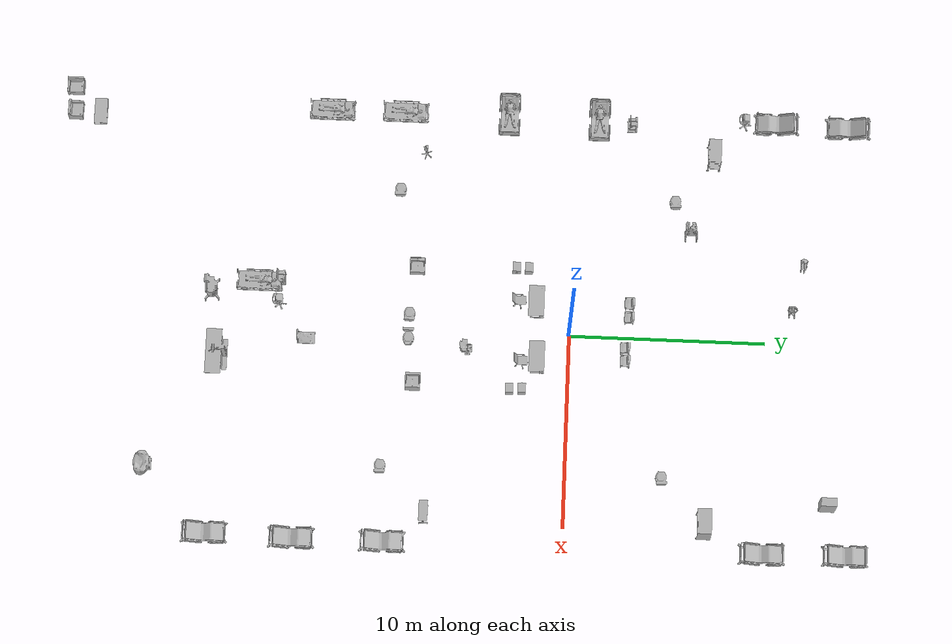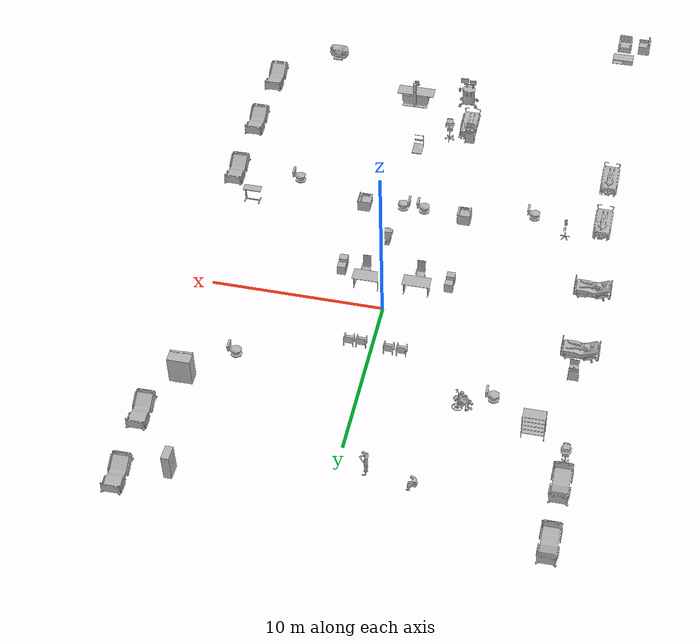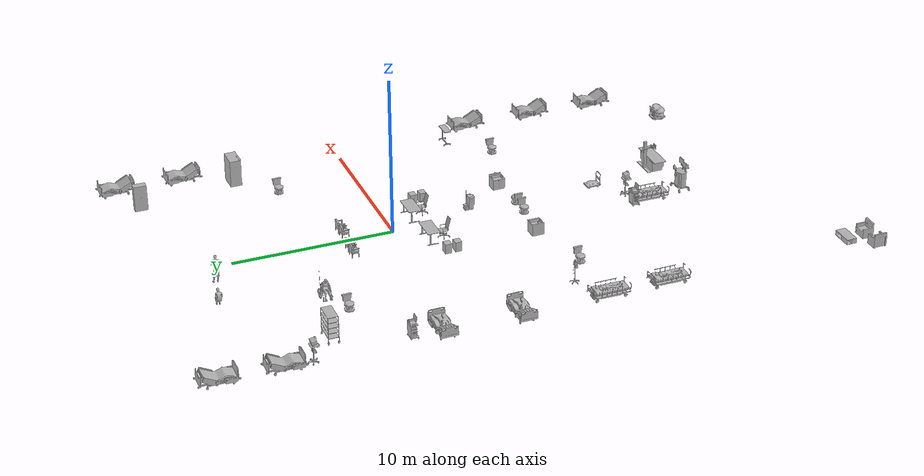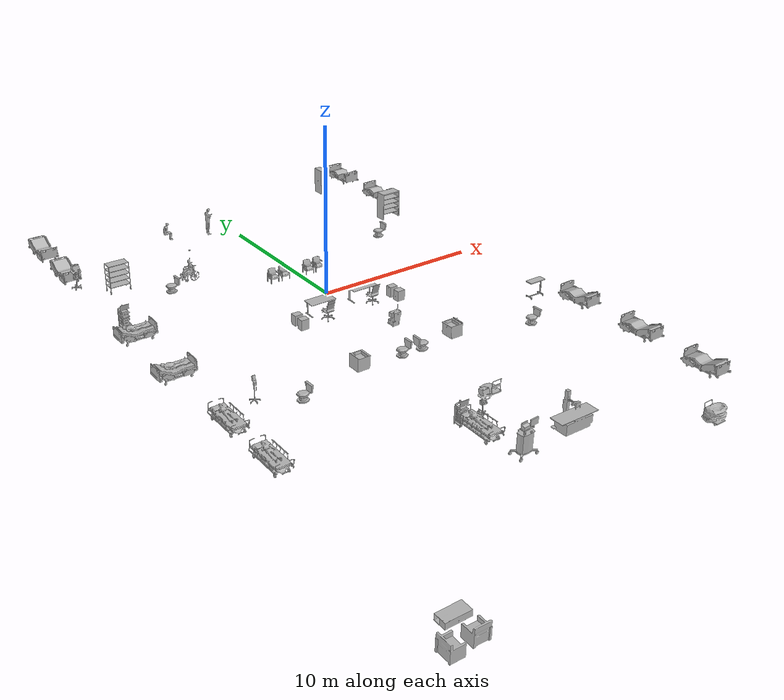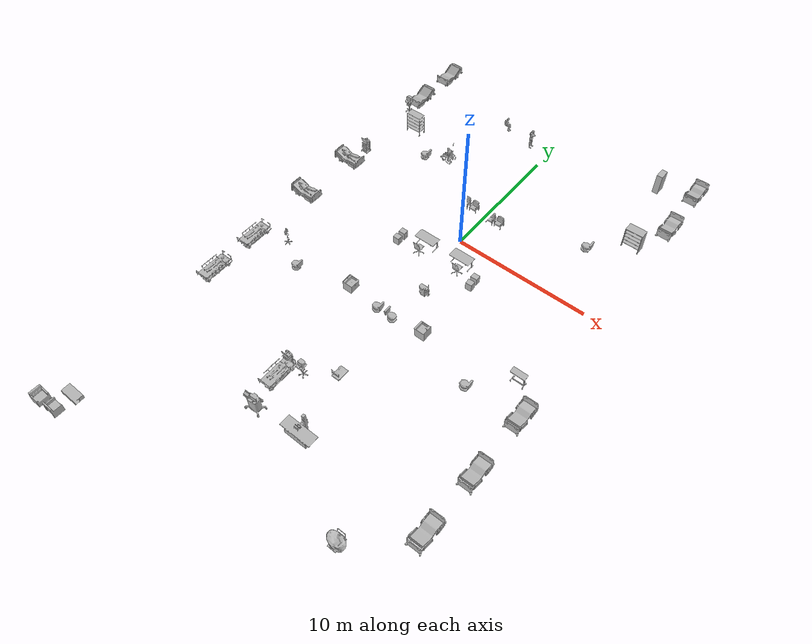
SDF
<sdf version="1.7">
 <world name="hospital">
  <light name="sun" type="directional">
   <pose>0 0 10 0 -0 0</pose>
   <diffuse>1 1 1 1</diffuse>
   <specular>0.5 0.5 0.5 1</specular>
   <attenuation>
    <range>2000</range>
    <constant>0.7</constant>
    <linear>0.005</linear>
    <quadratic>0.0005</quadratic>
   </attenuation>
   <direction>-0.5 0.1 -0.9</direction>
   <spot><inner_angle>0</inner_angle><outer_angle>0</outer_angle><falloff>0</falloff></spot>
  </light>
  <gravity>0 0 -9.8</gravity>
  <magnetic_field>6e-06 2.3e-05 -4.2e-05</magnetic_field>
  <atmosphere type="adiabatic"/>
  <physics type="ode">
   <max_step_size>0.001</max_step_size>
   <real_time_factor>1</real_time_factor>
   <real_time_update_rate>1000</real_time_update_rate>
  </physics>
  <scene><ambient>1 1 1 1</ambient><background>1 1 1 1</background><shadows>true</shadows></scene>
  <audio><device>default</device></audio>
  <spherical_coordinates>
   <surface_model>EARTH_WGS84</surface_model>
   <latitude_deg>0</latitude_deg>
   <longitude_deg>0</longitude_deg>
   <elevation>0</elevation>
   <heading_deg>0</heading_deg>
  </spherical_coordinates>
  <model name="OfficeChairBlack">
   <static>1</static>
   <link name="body">
    <visual name="visual">
     <geometry><mesh><uri>model://OfficeChairBlack/meshes/OfficeChairBlack.obj</uri></mesh></geometry>
    </visual>
    <collision name="collision">
     <geometry><mesh><uri>model://OfficeChairBlack/meshes/OfficeChairBlack_Col.obj</uri></mesh></geometry>
    </collision>
   </link>
   <pose>1.48635 -2.41893 0 0 0 -3.12536</pose>
  </model>
  <model name="OfficeChairBlack_clone">
   <static>1</static>
   <link name="body">
    <visual name="visual">
     <geometry><mesh><uri>model://OfficeChairBlack/meshes/OfficeChairBlack.obj</uri></mesh></geometry>
    </visual>
    <collision name="collision">
     <geometry><mesh><uri>model://OfficeChairBlack/meshes/OfficeChairBlack_Col.obj</uri></mesh></geometry>
    </collision>
   </link>
   <pose>-1.6644 -2.62036 0 0 0 -3.12536</pose>
  </model>
  <model name="XRayMachine">
   <static>1</static>
   <link name="body">
    <visual name="visual">
     <geometry><mesh><uri>model://XRayMachine/meshes/XRayMachine.obj</uri></mesh></geometry>
    </visual>
    <collision name="collision">
     <geometry><mesh><uri>model://XRayMachine/meshes/XRayMachine_Col.obj</uri></mesh></geometry>
    </collision>
   </link>
   <pose>1.70077 -18.2476 0 0 -0 0</pose>
  </model>
  <model name="aws_robomaker_residential_CoffeeTable_01">
   <link name="link">
    <inertial>
     <mass>21.7</mass>
     <inertia><ixx>0.81375</ixx><ixy>0</ixy><ixz>0</ixz><iyy>2.76675</iyy><iyz>0</iyz><izz>3.254</izz></inertia>
    </inertial>
    <collision name="collision">
     <geometry>
      <mesh>
       <uri>model://aws_robomaker_residential_CoffeeTable_01/meshes/aws_CoffeeTable_01_collision.DAE</uri>
       <scale>1 1 1</scale>
      </mesh>
     </geometry>
     <surface><contact><ode><max_vel>0.01</max_vel></ode></contact></surface>
    </collision>
    <visual name="visual">
     <geometry>
      <mesh><uri>model://aws_robomaker_residential_CoffeeTable_01/meshes/aws_CoffeeTable_01_visual.DAE</uri></mesh>
     </geometry>
     <meta><layer>1</layer></meta>
    </visual>
   </link>
   <static>1</static>
   <pose>-10.936 -24.7038 0 0 -0 0</pose>
  </model>
  <model name="MaleVisitorOnPhone">
   <static>1</static>
   <link name="body">
    <visual name="visual">
     <geometry><mesh><uri>model://MaleVisitorOnPhone/meshes/MaleVisitorStatic.obj</uri></mesh></geometry>
    </visual>
    <collision name="collision">
     <geometry><mesh><uri>model://MaleVisitorOnPhone/meshes/MaleVisitorStatic_Col.obj</uri></mesh></geometry>
    </collision>
   </link>
   <pose>-1.58819 11.3758 0 0 -0 0</pose>
  </model>
  <model name="ElderLadyPatient">
   <link name="body">
    <visual name="visual">
     <geometry><mesh><uri>model://ElderLadyPatient/meshes/ElderFemale.obj</uri></mesh></geometry>
    </visual>
    <collision name="collision">
     <geometry><mesh><uri>model://ElderLadyPatient/meshes/ElderFemale.obj</uri></mesh></geometry>
    </collision>
    <inertial>
     <inertia><ixx>1</ixx><ixy>0</ixy><ixz>0</ixz><iyy>1</iyy><iyz>0</iyz><izz>1</izz></inertia>
     <mass>1</mass>
    </inertial>
   </link>
   <pose>-11.4847 1.19195 0.00166 0 -0 0</pose>
  </model>
  <model name="ElderLadyPatient_clone">
   <link name="body">
    <visual name="visual">
     <geometry><mesh><uri>model://ElderLadyPatient/meshes/ElderFemale.obj</uri></mesh></geometry>
    </visual>
    <collision name="collision">
     <geometry><mesh><uri>model://ElderLadyPatient/meshes/ElderFemale.obj</uri></mesh></geometry>
    </collision>
    <inertial>
     <inertia><ixx>1</ixx><ixy>0</ixy><ixz>0</ixz><iyy>1</iyy><iyz>0</iyz><izz>1</izz></inertia>
     <mass>1</mass>
    </inertial>
   </link>
   <pose>-11.5951 -3.48208 0.001654 0 -1e-06 0</pose>
  </model>
  <model name="BedTable">
   <link name="body">
    <visual name="visual">
     <geometry><mesh><uri>model://BedTable/meshes/BedTable.obj</uri></mesh></geometry>
    </visual>
    <collision name="collision">
     <geometry><mesh><uri>model://BedTable/meshes/BedTable_Col.obj</uri></mesh></geometry>
    </collision>
    <inertial>
     <inertia><ixx>1</ixx><ixy>0</ixy><ixz>0</ixz><iyy>1</iyy><iyz>0</iyz><izz>1</izz></inertia>
     <mass>1</mass>
    </inertial>
   </link>
   <pose>9.62233 -7.0436 0.00118 0 -0 0</pose>
  </model>
  <model name="MopCart3">
   <link name="link">
    <visual name="visual">
     <geometry><mesh><uri>model://MopCart3/meshes/MopCart3.obj</uri></mesh></geometry>
    </visual>
    <collision name="collision">
     <geometry><mesh><uri>model://MopCart3/meshes/MopCart3.obj</uri></mesh></geometry>
    </collision>
    <inertial>
     <inertia><ixx>1</ixx><ixy>0</ixy><ixz>0</ixz><iyy>1</iyy><iyz>0</iyz><izz>1</izz></inertia>
     <mass>1</mass>
    </inertial>
   </link>
   <pose>0.883417 -5.18781 -5.9e-05 -1e-06 -1e-06 0</pose>
  </model>
  <model name="StorageRackCoverOpen">
   <link name="link">
    <visual name="visual">
     <geometry><mesh><uri>model://StorageRackCoverOpen/meshes/StorageRackCoverOpen.obj</uri></mesh></geometry>
    </visual>
    <collision name="collision">
     <geometry><mesh><uri>model://StorageRackCoverOpen/meshes/StorageRackCoverOpen.obj</uri></mesh></geometry>
    </collision>
    <inertial>
     <inertia><ixx>1</ixx><ixy>0</ixy><ixz>0</ixz><iyy>1</iyy><iyz>0</iyz><izz>1</izz></inertia>
     <mass>1</mass>
    </inertial>
   </link>
   <pose>9.62753 7.09222 -0 0 -0 0</pose>
  </model>
  <model name="StorageRack">
   <link name="link">
    <visual name="visual">
     <geometry><mesh><uri>model://StorageRack/meshes/StorageRack.obj</uri></mesh></geometry>
    </visual>
    <collision name="collision">
     <geometry><mesh><uri>model://StorageRack/meshes/StorageRack.obj</uri></mesh></geometry>
    </collision>
    <inertial>
     <inertia><ixx>1</ixx><ixy>0</ixy><ixz>0</ixz><iyy>1</iyy><iyz>0</iyz><izz>1</izz></inertia>
     <mass>1</mass>
    </inertial>
   </link>
   <pose>-9.67937 7.15189 -0 0 -0 0</pose>
  </model>
  <model name="InstrumentCart1">
   <static>1</static>
   <link name="body">
    <visual name="visual">
     <geometry><mesh><uri>model://InstrumentCart1/meshes/InstrumentCart1.obj</uri></mesh></geometry>
    </visual>
    <collision name="collision">
     <geometry><mesh><uri>model://InstrumentCart1/meshes/InstrumentCart1.obj</uri></mesh></geometry>
    </collision>
   </link>
   <pose>-11.2441 2.9035 0 0 -0 0</pose>
  </model>
  <model name="Toilet">
   <link name="body">
    <visual name="visual">
     <geometry><mesh><uri>model://Toilet/meshes/toilet.obj</uri><scale>1.75 1.75 1.75</scale></mesh></geometry>
    </visual>
    <collision name="collision">
     <geometry><mesh><uri>model://Toilet/meshes/toilet.obj</uri><scale>1.75 1.75 1.75</scale></mesh></geometry>
    </collision>
    <inertial>
     <inertia><ixx>1</ixx><ixy>0</ixy><ixz>0</ixz><iyy>1</iyy><iyz>0</iyz><izz>1</izz></inertia>
     <mass>1</mass>
    </inertial>
   </link>
   <pose>-7.2492 5.23347 0.000377 0 0 -3.11903</pose>
  </model>
  <model name="Toilet_clone_0">
   <link name="body">
    <visual name="visual">
     <geometry><mesh><uri>model://Toilet/meshes/toilet.obj</uri><scale>1.75 1.75 1.75</scale></mesh></geometry>
    </visual>
    <collision name="collision">
     <geometry><mesh><uri>model://Toilet/meshes/toilet.obj</uri><scale>1.75 1.75 1.75</scale></mesh></geometry>
    </collision>
    <inertial>
     <inertia><ixx>1</ixx><ixy>0</ixy><ixz>0</ixz><iyy>1</iyy><iyz>0</iyz><izz>1</izz></inertia>
     <mass>1</mass>
    </inertial>
   </link>
   <pose>0.5145 -8.21193 0.000387 0 0 -0.000684</pose>
  </model>
  <model name="Toilet_clone">
   <link name="body">
    <visual name="visual">
     <geometry><mesh><uri>model://Toilet/meshes/toilet.obj</uri><scale>1.75 1.75 1.75</scale></mesh></geometry>
    </visual>
    <collision name="collision">
     <geometry><mesh><uri>model://Toilet/meshes/toilet.obj</uri><scale>1.75 1.75 1.75</scale></mesh></geometry>
    </collision>
    <inertial>
     <inertia><ixx>1</ixx><ixy>0</ixy><ixz>0</ixz><iyy>1</iyy><iyz>0</iyz><izz>1</izz></inertia>
     <mass>1</mass>
    </inertial>
   </link>
   <pose>-7.36622 -8.94531 0.000386 0 0 -3.11905</pose>
  </model>
  <model name="PatientFSit">
   <static>1</static>
   <link name="body">
    <visual name="visual">
     <geometry><mesh><uri>model://PatientFSit/meshes/PatientFSit.obj</uri></mesh></geometry>
    </visual>
    <collision name="collision">
     <geometry><mesh><uri>model://PatientFSit/meshes/PatientFSit_Col.obj</uri></mesh></geometry>
    </collision>
   </link>
   <pose>-4.27911 11.8988 0 0 -0 0</pose>
  </model>
  <model name="PatientWheelChair">
   <static>1</static>
   <link name="body">
    <visual name="visual">
     <geometry><mesh><uri>model://PatientWheelChair/meshes/PatientWheelChair.obj</uri></mesh></geometry>
    </visual>
    <collision name="collision">
     <geometry><mesh><uri>model://PatientWheelChair/meshes/PatientWheelChair_Col.obj</uri></mesh></geometry>
    </collision>
   </link>
   <pose>-5.70675 6.08538 0 0 0 -1.55882</pose>
  </model>
  <model name="TrolleyBedPatient">
   <static>1</static>
   <link name="body">
    <visual name="visual">
     <geometry><mesh><uri>model://TrolleyBedPatient/meshes/TrolleyBedPatient.obj</uri></mesh></geometry>
    </visual>
    <collision name="collision">
     <geometry><mesh><uri>model://TrolleyBedPatient/meshes/TrolleyBedPatient.obj</uri></mesh></geometry>
    </collision>
   </link>
   <pose>-11.4617 -8.85632 0 0 -0 0</pose>
  </model>
  <model name="TrolleyBedPatient_clone">
   <static>1</static>
   <link name="body">
    <visual name="visual">
     <geometry><mesh><uri>model://TrolleyBedPatient/meshes/TrolleyBedPatient.obj</uri></mesh></geometry>
    </visual>
    <collision name="collision">
     <geometry><mesh><uri>model://TrolleyBedPatient/meshes/TrolleyBedPatient.obj</uri></mesh></geometry>
    </collision>
   </link>
   <pose>-11.4231 -12.6463 0 0 -0 0</pose>
  </model>
  <model name="AdjTable_clone">
   <static>1</static>
   <link name="body">
    <visual name="visual">
     <geometry><mesh><uri>model://AdjTable/meshes/AdjTable.obj</uri></mesh></geometry>
    </visual>
    <collision name="collision">
     <geometry><mesh><uri>model://AdjTable/meshes/AdjTable_Col.obj</uri></mesh></geometry>
    </collision>
   </link>
   <pose>1.29111 -1.62484 0 0 -0 0</pose>
  </model>
  <model name="AdjTable_clone_0">
   <static>1</static>
   <link name="body">
    <visual name="visual">
     <geometry><mesh><uri>model://AdjTable/meshes/AdjTable.obj</uri></mesh></geometry>
    </visual>
    <collision name="collision">
     <geometry><mesh><uri>model://AdjTable/meshes/AdjTable_Col.obj</uri></mesh></geometry>
    </collision>
   </link>
   <pose>-1.60626 -1.73781 0 0 -0 0</pose>
  </model>
  <model name="AnesthesiaMachine">
   <static>1</static>
   <link name="body">
    <visual name="visual">
     <geometry><mesh><uri>model://AnesthesiaMachine/meshes/AnesthesiaMachine.obj</uri></mesh></geometry>
    </visual>
    <collision name="collision">
     <geometry><mesh><uri>model://AnesthesiaMachine/meshes/AnesthesiaMachine_Col.obj</uri></mesh></geometry>
    </collision>
   </link>
   <pose>-1.65596 -18.3767 0 0 0 -3.09236</pose>
  </model>
  <model name="BPCart">
   <link name="body">
    <visual name="visual"><geometry><mesh><uri>model://BPCart/meshes/Cart_BP.obj</uri></mesh></geometry></visual>
    <collision name="collision">
     <geometry><mesh><uri>model://BPCart/meshes/Cart_BP_Col.obj</uri></mesh></geometry>
    </collision>
    <inertial>
     <inertia><ixx>1</ixx><ixy>0</ixy><ixz>0</ixz><iyy>1</iyy><iyz>0</iyz><izz>1</izz></inertia>
     <mass>1</mass>
    </inertial>
   </link>
   <pose>-1.07656 -14.9393 0.003446 0 -0 0</pose>
  </model>
  <model name="BPCart_0">
   <link name="body">
    <visual name="visual"><geometry><mesh><uri>model://BPCart/meshes/Cart_BP.obj</uri></mesh></geometry></visual>
    <collision name="collision">
     <geometry><mesh><uri>model://BPCart/meshes/Cart_BP_Col.obj</uri></mesh></geometry>
    </collision>
    <inertial>
     <inertia><ixx>1</ixx><ixy>0</ixy><ixz>0</ixz><iyy>1</iyy><iyz>0</iyz><izz>1</izz></inertia>
     <mass>1</mass>
    </inertial>
   </link>
   <pose>-11.5774 8.64679 0.003446 0 -0 0</pose>
  </model>
  <model name="BloodPressureMonitor">
   <static>1</static>
   <link name="body">
    <visual name="visual">
     <geometry><mesh><uri>model://BloodPressureMonitor/meshes/BloodPressureMonitor.obj</uri></mesh></geometry>
    </visual>
    <collision name="collision">
     <geometry><mesh><uri>model://BloodPressureMonitor/meshes/BloodPressureMonitor_Col.obj</uri></mesh></geometry>
    </collision>
   </link>
   <pose>-9.3546 -7.6902 0 0 -0 0</pose>
  </model>
  <model name="CGMClassic">
   <static>1</static>
   <link name="body">
    <visual name="visual">
     <geometry>
      <mesh><uri>model://CGMClassic/meshes/CGMClassic.obj</uri><scale>0.01 0.01 0.01</scale></mesh>
     </geometry>
    </visual>
    <collision name="collision">
     <geometry>
      <mesh><uri>model://CGMClassic/meshes/CGMClassic.obj</uri><scale>0.01 0.01 0.01</scale></mesh>
     </geometry>
    </collision>
   </link>
   <pose>-11.5047 14.0926 0 0 -0 0</pose>
  </model>
  <model name="CGMClassic_clone">
   <static>1</static>
   <link name="body">
    <visual name="visual">
     <geometry>
      <mesh><uri>model://CGMClassic/meshes/CGMClassic.obj</uri><scale>0.01 0.01 0.01</scale></mesh>
     </geometry>
    </visual>
    <collision name="collision">
     <geometry>
      <mesh><uri>model://CGMClassic/meshes/CGMClassic.obj</uri><scale>0.01 0.01 0.01</scale></mesh>
     </geometry>
    </collision>
   </link>
   <pose>-11.5789 10.3881 0 0 -0 0</pose>
  </model>
  <model name="CGMClassic_clone_0">
   <static>1</static>
   <link name="body">
    <visual name="visual">
     <geometry>
      <mesh><uri>model://CGMClassic/meshes/CGMClassic.obj</uri><scale>0.01 0.01 0.01</scale></mesh>
     </geometry>
    </visual>
    <collision name="collision">
     <geometry>
      <mesh><uri>model://CGMClassic/meshes/CGMClassic.obj</uri><scale>0.01 0.01 0.01</scale></mesh>
     </geometry>
    </collision>
   </link>
   <pose>10.9077 14.2037 0 0 0 -3.12893</pose>
  </model>
  <model name="Chair">
   <link name="body">
    <pose>0 0 0 0 -0 1.5708</pose>
    <visual name="visual">
     <geometry>
      <mesh><uri>model://Chair/meshes/Chair.obj</uri><scale>0.00817 0.00817 0.00817</scale></mesh>
     </geometry>
    </visual>
    <collision name="collision">
     <geometry>
      <mesh><uri>model://Chair/meshes/Chair.obj</uri><scale>0.00817 0.00817 0.00817</scale></mesh>
     </geometry>
    </collision>
    <inertial>
     <inertia><ixx>1</ixx><ixy>0</ixy><ixz>0</ixz><iyy>1</iyy><iyz>0</iyz><izz>1</izz></inertia>
     <mass>1</mass>
    </inertial>
   </link>
   <pose>1.28095 2.84557 -0 0 1e-06 -1.57934</pose>
  </model>
  <model name="Chair_clone">
   <link name="body">
    <pose>0 0 0 0 -0 1.5708</pose>
    <visual name="visual">
     <geometry>
      <mesh><uri>model://Chair/meshes/Chair.obj</uri><scale>0.00817 0.00817 0.00817</scale></mesh>
     </geometry>
    </visual>
    <collision name="collision">
     <geometry>
      <mesh><uri>model://Chair/meshes/Chair.obj</uri><scale>0.00817 0.00817 0.00817</scale></mesh>
     </geometry>
    </collision>
    <inertial>
     <inertia><ixx>1</ixx><ixy>0</ixy><ixz>0</ixz><iyy>1</iyy><iyz>0</iyz><izz>1</izz></inertia>
     <mass>1</mass>
    </inertial>
   </link>
   <pose>0.580908 2.82681 -1e-06 -1e-06 -0 -1.57934</pose>
  </model>
  <model name="Chair_clone_0">
   <link name="body">
    <pose>0 0 0 0 -0 1.5708</pose>
    <visual name="visual">
     <geometry>
      <mesh><uri>model://Chair/meshes/Chair.obj</uri><scale>0.00817 0.00817 0.00817</scale></mesh>
     </geometry>
    </visual>
    <collision name="collision">
     <geometry>
      <mesh><uri>model://Chair/meshes/Chair.obj</uri><scale>0.00817 0.00817 0.00817</scale></mesh>
     </geometry>
    </collision>
    <inertial>
     <inertia><ixx>1</ixx><ixy>0</ixy><ixz>0</ixz><iyy>1</iyy><iyz>0</iyz><izz>1</izz></inertia>
     <mass>1</mass>
    </inertial>
   </link>
   <pose>-1 3 -1e-06 -1e-06 1e-06 -1.57934</pose>
  </model>
  <model name="Chair_clone_1">
   <link name="body">
    <pose>0 0 0 0 -0 1.5708</pose>
    <visual name="visual">
     <geometry>
      <mesh><uri>model://Chair/meshes/Chair.obj</uri><scale>0.00817 0.00817 0.00817</scale></mesh>
     </geometry>
    </visual>
    <collision name="collision">
     <geometry>
      <mesh><uri>model://Chair/meshes/Chair.obj</uri><scale>0.00817 0.00817 0.00817</scale></mesh>
     </geometry>
    </collision>
    <inertial>
     <inertia><ixx>1</ixx><ixy>0</ixy><ixz>0</ixz><iyy>1</iyy><iyz>0</iyz><izz>1</izz></inertia>
     <mass>1</mass>
    </inertial>
   </link>
   <pose>-1.73468 3.00151 -0 0 0 -1.57934</pose>
  </model>
  <model name="OfficeChairBlue">
   <static>1</static>
   <link name="body">
    <visual name="visual"><geometry><mesh><uri>model://Drawer/meshes/Drawer.obj</uri></mesh></geometry></visual>
    <collision name="collision">
     <geometry><mesh><uri>model://Drawer/meshes/Drawer.obj</uri></mesh></geometry>
    </collision>
   </link>
   <pose>2.95396 -2.95321 0 0 0 -1.54977</pose>
  </model>
  <model name="OfficeChairBlue_clone">
   <static>1</static>
   <link name="body">
    <visual name="visual"><geometry><mesh><uri>model://Drawer/meshes/Drawer.obj</uri></mesh></geometry></visual>
    <collision name="collision">
     <geometry><mesh><uri>model://Drawer/meshes/Drawer.obj</uri></mesh></geometry>
    </collision>
   </link>
   <pose>2.92336 -2.32085 0 0 0 -1.54977</pose>
  </model>
  <model name="OfficeChairBlue_0">
   <static>1</static>
   <link name="body">
    <visual name="visual"><geometry><mesh><uri>model://Drawer/meshes/Drawer.obj</uri></mesh></geometry></visual>
    <collision name="collision">
     <geometry><mesh><uri>model://Drawer/meshes/Drawer.obj</uri></mesh></geometry>
    </collision>
   </link>
   <pose>-3.40277 -2.17141 0 0 -0 1.55829</pose>
  </model>
  <model name="OfficeChairBlue_0_clone">
   <static>1</static>
   <link name="body">
    <visual name="visual"><geometry><mesh><uri>model://Drawer/meshes/Drawer.obj</uri></mesh></geometry></visual>
    <collision name="collision">
     <geometry><mesh><uri>model://Drawer/meshes/Drawer.obj</uri></mesh></geometry>
    </collision>
   </link>
   <pose>-3.40436 -2.80544 0 0 -0 1.55829</pose>
  </model>
  <model name="CGMClassic_clone_0_clone">
   <static>1</static>
   <link name="body">
    <visual name="visual">
     <geometry>
      <mesh><uri>model://CGMClassic/meshes/CGMClassic.obj</uri><scale>0.01 0.01 0.01</scale></mesh>
     </geometry>
    </visual>
    <collision name="collision">
     <geometry>
      <mesh><uri>model://CGMClassic/meshes/CGMClassic.obj</uri><scale>0.01 0.01 0.01</scale></mesh>
     </geometry>
    </collision>
   </link>
   <pose>10.9755 10.0143 0 0 0 -3.12893</pose>
  </model>
  <model name="CGMClassic_clone_0_clone_0">
   <static>1</static>
   <link name="body">
    <visual name="visual">
     <geometry>
      <mesh><uri>model://CGMClassic/meshes/CGMClassic.obj</uri><scale>0.01 0.01 0.01</scale></mesh>
     </geometry>
    </visual>
    <collision name="collision">
     <geometry>
      <mesh><uri>model://CGMClassic/meshes/CGMClassic.obj</uri><scale>0.01 0.01 0.01</scale></mesh>
     </geometry>
    </collision>
   </link>
   <pose>11.0878 -9.10351 0 0 0 -3.12893</pose>
  </model>
  <model name="CGMClassic_clone_0_clone_1">
   <static>1</static>
   <link name="body">
    <visual name="visual">
     <geometry>
      <mesh><uri>model://CGMClassic/meshes/CGMClassic.obj</uri><scale>0.01 0.01 0.01</scale></mesh>
     </geometry>
    </visual>
    <collision name="collision">
     <geometry>
      <mesh><uri>model://CGMClassic/meshes/CGMClassic.obj</uri><scale>0.01 0.01 0.01</scale></mesh>
     </geometry>
    </collision>
   </link>
   <pose>11.0878 -13.6981 0 0 0 -3.12893</pose>
  </model>
  <model name="CGMClassic_clone_0_clone_2">
   <static>1</static>
   <link name="body">
    <visual name="visual">
     <geometry>
      <mesh><uri>model://CGMClassic/meshes/CGMClassic.obj</uri><scale>0.01 0.01 0.01</scale></mesh>
     </geometry>
    </visual>
    <collision name="collision">
     <geometry>
      <mesh><uri>model://CGMClassic/meshes/CGMClassic.obj</uri><scale>0.01 0.01 0.01</scale></mesh>
     </geometry>
    </collision>
   </link>
   <pose>10.9921 -18.101 0 0 0 -3.12893</pose>
  </model>
  <model name="Toilet_clone_1">
   <link name="body">
    <visual name="visual">
     <geometry><mesh><uri>model://Toilet/meshes/toilet.obj</uri><scale>1.75 1.75 1.75</scale></mesh></geometry>
    </visual>
    <collision name="collision">
     <geometry><mesh><uri>model://Toilet/meshes/toilet.obj</uri><scale>1.75 1.75 1.75</scale></mesh></geometry>
    </collision>
    <inertial>
     <inertia><ixx>1</ixx><ixy>0</ixy><ixz>0</ixz><iyy>1</iyy><iyz>0</iyz><izz>1</izz></inertia>
     <mass>1</mass>
    </inertial>
   </link>
   <pose>-0.777265 -8.20185 0.000386 -0 -0 -3.11905</pose>
  </model>
  <model name="InstrumentCart1_0">
   <static>1</static>
   <link name="body">
    <visual name="visual">
     <geometry><mesh><uri>model://InstrumentCart1/meshes/InstrumentCart1.obj</uri></mesh></geometry>
    </visual>
    <collision name="collision">
     <geometry><mesh><uri>model://InstrumentCart1/meshes/InstrumentCart1.obj</uri></mesh></geometry>
    </collision>
   </link>
   <pose>-2.36657 -14.8691 0 0 -0 0</pose>
  </model>
  <model name="KitchenSink">
   <link name="link">
    <visual name="visual">
     <geometry><mesh><uri>model://KitchenSink/meshes/kitchenSink.obj</uri></mesh></geometry>
    </visual>
    <collision name="collision">
     <geometry><mesh><uri>model://KitchenSink/meshes/kitchenSink.obj</uri></mesh></geometry>
    </collision>
    <inertial>
     <inertia><ixx>1</ixx><ixy>0</ixy><ixz>0</ixz><iyy>1</iyy><iyz>0</iyz><izz>1</izz></inertia>
     <mass>1</mass>
    </inertial>
   </link>
   <pose>-3.28957 -7.90224 -0.001619 0 -0 0</pose>
  </model>
  <model name="KitchenSink_clone">
   <link name="link">
    <visual name="visual">
     <geometry><mesh><uri>model://KitchenSink/meshes/kitchenSink.obj</uri></mesh></geometry>
    </visual>
    <collision name="collision">
     <geometry><mesh><uri>model://KitchenSink/meshes/kitchenSink.obj</uri></mesh></geometry>
    </collision>
    <inertial>
     <inertia><ixx>1</ixx><ixy>0</ixy><ixz>0</ixz><iyy>1</iyy><iyz>0</iyz><izz>1</izz></inertia>
     <mass>1</mass>
    </inertial>
   </link>
   <pose>2.82144 -7.88826 -0.001609 0 0 -3.13369</pose>
  </model>
  <model name="MetalCabinet">
   <static>1</static>
   <link name="body">
    <visual name="visual">
     <geometry><mesh><uri>model://MetalCabinet/meshes/MetalCabinet.obj</uri></mesh></geometry>
    </visual>
    <collision name="collision">
     <geometry><mesh><uri>model://MetalCabinet/meshes/MetalCabinet.obj</uri></mesh></geometry>
    </collision>
   </link>
   <pose>8.37964 13.3122 0 0 0 -1.59131</pose>
  </model>
  <model name="ParkingTrolleyMax">
   <link name="body">
    <visual name="visual">
     <geometry><mesh><uri>model://ParkingTrolleyMax/meshes/ParkingTrolleyMax.obj</uri></mesh></geometry>
    </visual>
    <collision name="collision">
     <geometry><mesh><uri>model://ParkingTrolleyMax/meshes/ParkingTrolleyMax.obj</uri></mesh></geometry>
    </collision>
    <inertial>
     <inertia><ixx>1</ixx><ixy>0</ixy><ixz>0</ixz><iyy>1</iyy><iyz>0</iyz><izz>1</izz></inertia>
     <mass>1</mass>
    </inertial>
   </link>
   <pose>7.58097 -21.3967 -0.000111 0 0 -1.56236</pose>
  </model>
  <model name="Toilet_clone_1_clone">
   <link name="body">
    <visual name="visual">
     <geometry><mesh><uri>model://Toilet/meshes/toilet.obj</uri><scale>1.75 1.75 1.75</scale></mesh></geometry>
    </visual>
    <collision name="collision">
     <geometry><mesh><uri>model://Toilet/meshes/toilet.obj</uri><scale>1.75 1.75 1.75</scale></mesh></geometry>
    </collision>
    <inertial>
     <inertia><ixx>1</ixx><ixy>0</ixy><ixz>0</ixz><iyy>1</iyy><iyz>0</iyz><izz>1</izz></inertia>
     <mass>1</mass>
    </inertial>
   </link>
   <pose>7.17734 -9.35905 0.000387 0 -0 -3.11905</pose>
  </model>
  <model name="Toilet_clone_1_clone_0">
   <link name="body">
    <visual name="visual">
     <geometry><mesh><uri>model://Toilet/meshes/toilet.obj</uri><scale>1.75 1.75 1.75</scale></mesh></geometry>
    </visual>
    <collision name="collision">
     <geometry><mesh><uri>model://Toilet/meshes/toilet.obj</uri><scale>1.75 1.75 1.75</scale></mesh></geometry>
    </collision>
    <inertial>
     <inertia><ixx>1</ixx><ixy>0</ixy><ixz>0</ixz><iyy>1</iyy><iyz>0</iyz><izz>1</izz></inertia>
     <mass>1</mass>
    </inertial>
   </link>
   <pose>7.22484 4.899 0.000387 0 0 -3.11905</pose>
  </model>
  <model name="ParkingTrolleyMin">
   <link name="body">
    <visual name="visual">
     <geometry><mesh><uri>model://ParkingTrolleyMin/meshes/trolleymin.obj</uri></mesh></geometry>
    </visual>
    <collision name="collision">
     <geometry><mesh><uri>model://ParkingTrolleyMin/meshes/trolleymin.obj</uri></mesh></geometry>
    </collision>
    <inertial>
     <inertia><ixx>1</ixx><ixy>0</ixy><ixz>0</ixz><iyy>1</iyy><iyz>0</iyz><izz>1</izz></inertia>
     <mass>1</mass>
    </inertial>
   </link>
   <pose>0.677889 -13.4411 -0.000121 -1e-06 -0 -0</pose>
  </model>
  <model name="TrolleyBedPatient_0">
   <static>1</static>
   <link name="body">
    <visual name="visual">
     <geometry><mesh><uri>model://TrolleyBedPatient/meshes/TrolleyBedPatient.obj</uri></mesh></geometry>
    </visual>
    <collision name="collision">
     <geometry><mesh><uri>model://TrolleyBedPatient/meshes/TrolleyBedPatient.obj</uri></mesh></geometry>
    </collision>
   </link>
   <pose>-2.16385 -15.9333 0 0 -0 0</pose>
  </model>
  <model name="aws_robomaker_residential_SofaB_01">
   <link name="link">
    <inertial>
     <mass>72.5</mass>
     <inertia><ixx>1</ixx><ixy>0</ixy><ixz>0</ixz><iyy>1</iyy><iyz>0</iyz><izz>1</izz></inertia>
    </inertial>
    <collision name="collision">
     <geometry>
      <mesh>
       <uri>model://aws_robomaker_residential_SofaB_01/meshes/aws_SofaB_01_collision.DAE</uri>
       <scale>1 1 1</scale>
      </mesh>
     </geometry>
    </collision>
    <visual name="visual">
     <geometry>
      <mesh><uri>model://aws_robomaker_residential_SofaB_01/meshes/aws_SofaB_01_visual.DAE</uri></mesh>
     </geometry>
     <meta><layer>1</layer></meta>
    </visual>
   </link>
   <pose>-12.177 -26.0533 -9e-06 -2.3e-05 -3e-06 0.00087</pose>
  </model>
  <model name="aws_robomaker_residential_SofaB_01_clone">
   <link name="link">
    <inertial>
     <mass>72.5</mass>
     <inertia><ixx>1</ixx><ixy>0</ixy><ixz>0</ixz><iyy>1</iyy><iyz>0</iyz><izz>1</izz></inertia>
    </inertial>
    <collision name="collision">
     <geometry>
      <mesh>
       <uri>model://aws_robomaker_residential_SofaB_01/meshes/aws_SofaB_01_collision.DAE</uri>
       <scale>1 1 1</scale>
      </mesh>
     </geometry>
    </collision>
    <visual name="visual">
     <geometry>
      <mesh><uri>model://aws_robomaker_residential_SofaB_01/meshes/aws_SofaB_01_visual.DAE</uri></mesh>
     </geometry>
     <meta><layer>1</layer></meta>
    </visual>
   </link>
   <pose>-10.9132 -25.9712 -5e-06 -0 1.3e-05 1.56354</pose>
  </model>
 </world>
</sdf>
